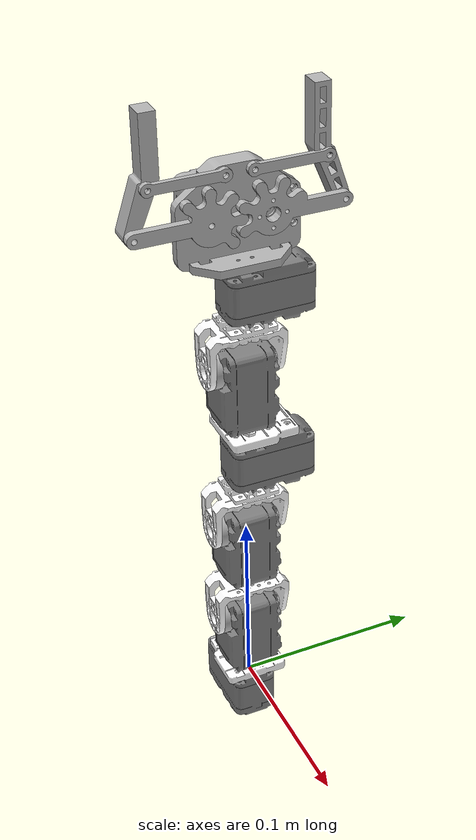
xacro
<?xml version="1.0"?>
<!-- HerkuleX Arm Chain -->

<robot name="HerkuleX" xmlns:xacro="http://ros.org/wiki/xacro">
  <!-- Import Rviz colors -->
  <xacro:include filename="$(find HerkuleX_description)/urdf/materials.xacro" />

  <xacro:property name="LSupport"	value="0.00275"/>
  <xacro:property name="Brakect05H"	value="0.00275"/>
  <xacro:property name="HerkuleXZoffset" value="0.03533"/>

  <xacro:property name="PI"	value="3.1415926"/>

  <link name="base"/>
  <joint name="fixed" type="fixed">
    <parent link="base"/>
    <child link="link1"/>
     <origin xyz="0 0 0.00313" rpy="0 0 0"/>
  </joint>

  <link name="link1">
    <collision>
      <origin xyz="0 0 0" rpy="0 0 0"/>
      <geometry>
        <mesh filename="package://HerkuleX_description/meshes//DRS_0101.stl" scale="0.001 0.001 0.001"/>
      </geometry>
     	<material name="DarkGrey"/>
    </collision>
    <visual>
      <origin xyz="0 0 0" rpy="0 0 0"/>
      <geometry>
        <mesh filename="package://HerkuleX_description/meshes//DRS_0101.stl" scale="0.001 0.001 0.001"/>
      </geometry>
      	<material name="DarkGrey"/>
    </visual>
    <inertial>
      <origin xyz="0 0 0" rpy="0 0 0"/>
      <mass value="1"/>
      <inertia ixx="1.0" ixy="0.0" ixz="0.0" iyy="1.0" iyz="0.0" izz="1.0"/>
    </inertial>
  </link>

  <joint name="joint1" type="revolute">
    <parent link="link1"/>
    <child link="horn1"/>
    <origin xyz="0 0 0" rpy="0 0 0"/>
    <axis xyz="0 0 1"/>
    <limit effort="30" lower="-2.617" upper="2.617" velocity="1.571"/>
  </joint>

  <link name="horn1">
    <collision>
      <origin xyz="0 0 0" rpy="0 0 0"/>
      <geometry>
        <mesh filename="package://HerkuleX_description/meshes//horn.stl" scale="0.001 0.001 0.001"/>
      </geometry>
     	<material name="Grey"/>
    </collision>
    <visual>
      <origin xyz="0 0 0" rpy="0 0 0"/>
      <geometry>
        <mesh filename="package://HerkuleX_description/meshes//horn.stl" scale="0.001 0.001 0.001"/>
      </geometry>
      	<material name="Grey"/>
    </visual>
    <inertial>
      <origin xyz="0 0 0" rpy="0 0 0"/>
      <mass value="1"/>
      <inertia ixx="1.0" ixy="0.0" ixz="0.0" iyy="1.0" iyz="0.0" izz="1.0"/>
    </inertial>
  </link>

  <joint name="fixed1" type="fixed">
    <parent link="horn1"/>
    <child link="DRB00051"/>
  </joint>

  <link name="DRB00051">
    <collision>
      <origin xyz="0 0 0" rpy="0 0 0"/>
      <geometry>
        <mesh filename="package://HerkuleX_description/meshes//DRB_0005.stl" scale="0.001 0.001 0.001"/>
      </geometry>
     	<material name="White"/>
    </collision>
    <visual>
      <origin xyz="0 0 0" rpy="0 0 0"/>
      <geometry>
        <mesh filename="package://HerkuleX_description/meshes//DRB_0005.stl" scale="0.001 0.001 0.001"/>
      </geometry>
      	<material name="White"/>
    </visual>
    <inertial>
      <origin xyz="0 0 0" rpy="0 0 0"/>
      <mass value="1"/>
      <inertia ixx="1.0" ixy="0.0" ixz="0.0" iyy="1.0" iyz="0.0" izz="1.0"/>
    </inertial>
  </link>

  <joint name="fixed2" type="fixed">
    <parent link="DRB00051"/>
    <child link="link2"/>
  </joint>

  <link name="link2">
    <collision>
      <origin xyz="0 -0.01625 ${HerkuleXZoffset + LSupport + Brakect05H}" rpy="${PI/2} ${-PI/2} 0"/>
      <geometry>
        <mesh filename="package://HerkuleX_description/meshes//DRS_0101.stl" scale="0.001 0.001 0.001"/>
      </geometry>
     	<material name="DarkGrey"/>
    </collision>
    <visual>
      <origin xyz="0 -0.01625 ${HerkuleXZoffset + LSupport + Brakect05H}" rpy="${PI/2} ${-PI/2} 0"/>
      <geometry>
        <mesh filename="package://HerkuleX_description/meshes//DRS_0101.stl" scale="0.001 0.001 0.001"/>
      </geometry>
      	<material name="DarkGrey"/>
    </visual>
    <inertial>
      <origin xyz="0 -0.01625 ${HerkuleXZoffset + LSupport + Brakect05H}" rpy="${PI/2} ${-PI/2} 0"/>
      <mass value="1"/>
      <inertia ixx="1.0" ixy="0.0" ixz="0.0" iyy="1.0" iyz="0.0" izz="1.0"/>
    </inertial>
  </link>

  <joint name="joint2" type="revolute">
    <parent link="link2"/>
    <child link="horn2"/>
    <origin xyz="0 -0.01625 ${HerkuleXZoffset + LSupport + Brakect05H}" rpy="${PI/2} ${-PI/2} 0"/>
    <axis xyz="0 0 1"/>
    <limit effort="30" lower="-2.44346" upper="2.44346" velocity="1.571"/>
  </joint>

  <link name="horn2">
    <collision>
      <origin xyz="0 0 0" rpy="0 0 0"/>
      <geometry>
        <mesh filename="package://HerkuleX_description/meshes//horn.stl" scale="0.001 0.001 0.001"/>
      </geometry>
     	<material name="Grey"/>
    </collision>
    <visual>
      <origin xyz="0 0 0" rpy="0 0 0"/>
      <geometry>
        <mesh filename="package://HerkuleX_description/meshes//horn.stl" scale="0.001 0.001 0.001"/>
      </geometry>
      	<material name="Grey"/>
    </visual>
    <inertial>
      <origin xyz="0 0 0" rpy="0 0 0"/>
      <mass value="1"/>
      <inertia ixx="1.0" ixy="0.0" ixz="0.0" iyy="1.0" iyz="0.0" izz="1.0"/>
    </inertial>
  </link>

  <joint name="fixed3" type="fixed">
    <parent link="horn2"/>
    <child link="DRB00091"/>
  </joint>

  <link name="DRB00091">
    <collision>
      <origin xyz="0.0215 0 -0.016" rpy="${-PI/2} 0 ${PI/2}"/>
      <geometry>
        <mesh filename="package://HerkuleX_description/meshes//DRB_0009.stl" scale="0.001 0.001 0.001"/>
      </geometry>
     	<material name="White"/>
    </collision>
    <visual>
      <origin xyz="0.0215 0 -0.016" rpy="${-PI/2} 0 ${PI/2}"/>
      <geometry>
        <mesh filename="package://HerkuleX_description/meshes//DRB_0009.stl" scale="0.001 0.001 0.001"/>
      </geometry>
      	<material name="White"/>
    </visual>
    <inertial>
      <origin xyz="0.0215 0 -0.016" rpy="${-PI/2} 0 ${PI/2}"/>
      <mass value="1"/>
      <inertia ixx="1.0" ixy="0.0" ixz="0.0" iyy="1.0" iyz="0.0" izz="1.0"/>
    </inertial>
  </link>

  <joint name="fixed4" type="fixed">
    <parent link="DRB00091"/>
    <child link="link3"/>
  </joint>

  <link name="link3">
    <collision>
      <origin xyz="${HerkuleXZoffset + LSupport + 0.0215} 0 0" rpy="0 0 0"/>
      <geometry>
        <mesh filename="package://HerkuleX_description/meshes//DRS_0101.stl" scale="0.001 0.001 0.001"/>
      </geometry>
     	<material name="DarkGrey"/>
    </collision>
    <visual>
      <origin xyz="${HerkuleXZoffset + LSupport + 0.0215} 0 0" rpy="0 0 0"/>
      <geometry>
        <mesh filename="package://HerkuleX_description/meshes//DRS_0101.stl" scale="0.001 0.001 0.001"/>
      </geometry>
      	<material name="DarkGrey"/>
    </visual>
    <inertial>
      <origin xyz="${HerkuleXZoffset + LSupport + 0.0215} 0 0" rpy="0 0 0"/>
      <mass value="1"/>
      <inertia ixx="1.0" ixy="0.0" ixz="0.0" iyy="1.0" iyz="0.0" izz="1.0"/>
    </inertial>
  </link>

  <joint name="joint3" type="revolute">
    <parent link="link3"/>
    <child link="horn3"/>
    <origin xyz="${HerkuleXZoffset + LSupport + 0.0215} 0 0" rpy="0 0 0"/>
    <axis xyz="0 0 1"/>
    <limit effort="30" lower="-2.44346" upper="2.44346" velocity="1.571"/>
  </joint>

  <link name="horn3">
    <collision>
      <origin xyz="0 0 0" rpy="0 0 0"/>
      <geometry>
        <mesh filename="package://HerkuleX_description/meshes//horn.stl" scale="0.001 0.001 0.001"/>
      </geometry>
     	<material name="Grey"/>
    </collision>
    <visual>
      <origin xyz="0 0 0" rpy="0 0 0"/>
      <geometry>
        <mesh filename="package://HerkuleX_description/meshes//horn.stl" scale="0.001 0.001 0.001"/>
      </geometry>
      	<material name="Grey"/>
    </visual>
    <inertial>
      <origin xyz="0 0 0" rpy="0 0 0"/>
      <mass value="1"/>
      <inertia ixx="1.0" ixy="0.0" ixz="0.0" iyy="1.0" iyz="0.0" izz="1.0"/>
    </inertial>
  </link>

  <joint name="fixed5" type="fixed">
    <parent link="horn3"/>
    <child link="DRB00092"/>
  </joint>

  <link name="DRB00092">
    <collision>
      <origin xyz="0.0215 0 -0.016" rpy="${-PI/2} 0 ${PI/2}"/>
      <geometry>
        <mesh filename="package://HerkuleX_description/meshes//DRB_0009.stl" scale="0.001 0.001 0.001"/>
      </geometry>
     	<material name="White"/>
    </collision>
    <visual>
      <origin xyz="0.0215 0 -0.016" rpy="${-PI/2} 0 ${PI/2}"/>
      <geometry>
        <mesh filename="package://HerkuleX_description/meshes//DRB_0009.stl" scale="0.001 0.001 0.001"/>
      </geometry>
      	<material name="White"/>
    </visual>
    <inertial>
      <origin xyz="0.0215 0 -0.016" rpy="${-PI/2} 0 ${PI/2}"/>
      <mass value="1"/>
      <inertia ixx="1.0" ixy="0.0" ixz="0.0" iyy="1.0" iyz="0.0" izz="1.0"/>
    </inertial>
  </link>

  <joint name="fixed6" type="fixed">
    <parent link="DRB00092"/>
    <child link="DRB00041"/>
  </joint>

  <link name="DRB00041">
    <collision>
      <origin xyz="${0.0215+Brakect05H} 0 -0.01625" rpy="${PI/2} 0 0"/>
      <geometry>
        <mesh filename="package://HerkuleX_description/meshes//DRB_0004.stl" scale="0.001 0.001 0.001"/>
      </geometry>
     	<material name="White"/>
    </collision>
    <visual>
      <origin xyz="${0.0215+Brakect05H} 0 -0.01625" rpy="${PI/2} 0 0"/>
      <geometry>
        <mesh filename="package://HerkuleX_description/meshes//DRB_0004.stl" scale="0.001 0.001 0.001"/>
      </geometry>
      	<material name="White"/>
    </visual>
    <inertial>
      <origin xyz="${0.0215+Brakect05H} 0 -0.01625" rpy="${PI/2} 0 0"/>
      <mass value="1"/>
      <inertia ixx="1.0" ixy="0.0" ixz="0.0" iyy="1.0" iyz="0.0" izz="1.0"/>
    </inertial>
  </link>

  <joint name="fixed7" type="fixed">
    <parent link="DRB00041"/>
    <child link="link4"/>
     <origin xyz="0 0 0" rpy="0 0 0"/>
  </joint>

  <link name="link4">
    <collision>
      <origin xyz="${HerkuleXZoffset + 0.0215} 0 -0.01625" rpy="${PI} ${-PI/2} 0"/>
      <geometry>
        <mesh filename="package://HerkuleX_description/meshes//DRS_0101.stl" scale="0.001 0.001 0.001"/>
      </geometry>
     	<material name="DarkGrey"/>
    </collision>
    <visual>
      <origin xyz="${HerkuleXZoffset + 0.0215} 0 -0.01625" rpy="${PI} ${-PI/2} 0"/>
      <geometry>
        <mesh filename="package://HerkuleX_description/meshes//DRS_0101.stl" scale="0.001 0.001 0.001"/>
      </geometry>
      	<material name="DarkGrey"/>
    </visual>
    <inertial>
      <origin xyz="${HerkuleXZoffset + 0.0215} 0 -0.01625" rpy="${PI} ${-PI/2} 0"/>
      <mass value="1"/>
      <inertia ixx="1.0" ixy="0.0" ixz="0.0" iyy="1.0" iyz="0.0" izz="1.0"/>
    </inertial>
  </link>

  <joint name="joint4" type="revolute">
    <parent link="link4"/>
    <child link="horn4"/>
    <origin xyz="${HerkuleXZoffset + 0.0215} 0 -0.01625" rpy="${PI/2} ${PI} ${PI/2}"/>
    <axis xyz="0 0 1"/>
    <limit effort="30" lower="-2.617" upper="2.617" velocity="1.571"/>
  </joint>

  <link name="horn4">
    <collision>
      <origin xyz="0 0 0" rpy="0 0 0"/>
      <geometry>
        <mesh filename="package://HerkuleX_description/meshes//horn.stl" scale="0.001 0.001 0.001"/>
      </geometry>
     	<material name="Grey"/>
    </collision>
    <visual>
      <origin xyz="0 0 0" rpy="0 0 0"/>
      <geometry>
        <mesh filename="package://HerkuleX_description/meshes//horn.stl" scale="0.001 0.001 0.001"/>
      </geometry>
      	<material name="Grey"/>
    </visual>
    <inertial>
      <origin xyz="0 0 0" rpy="0 0 0"/>
      <mass value="1"/>
      <inertia ixx="1.0" ixy="0.0" ixz="0.0" iyy="1.0" iyz="0.0" izz="1.0"/>
    </inertial>
  </link>

  <joint name="fixed8" type="fixed">
    <parent link="horn4"/>
    <child link="DRB00052"/>
     <origin xyz="0 0 0" rpy="0 0 0"/>
  </joint>

  <link name="DRB00052">
    <collision>
      <origin xyz="0 0 0" rpy="0 0 ${-PI/2}"/>
      <geometry>
        <mesh filename="package://HerkuleX_description/meshes//DRB_0005.stl" scale="0.001 0.001 0.001"/>
      </geometry>
     	<material name="White"/>
    </collision>
    <visual>
      <origin xyz="0 0 0" rpy="0 0 ${-PI/2}"/>
      <geometry>
        <mesh filename="package://HerkuleX_description/meshes//DRB_0005.stl" scale="0.001 0.001 0.001"/>
      </geometry>
      	<material name="White"/>
    </visual>
    <inertial>
      <origin xyz="0 0 0" rpy="0 0 ${-PI/2}"/>
      <mass value="1"/>
      <inertia ixx="1.0" ixy="0.0" ixz="0.0" iyy="1.0" iyz="0.0" izz="1.0"/>
    </inertial>
  </link>

  <joint name="fixed9" type="fixed">
    <parent link="DRB00052"/>
    <child link="link5"/>
     <origin xyz="0 0 0" rpy="0 0 0"/>
  </joint>

  <link name="link5">
    <collision>
      <origin xyz="0 -0.01625 ${HerkuleXZoffset + LSupport + Brakect05H}" rpy="${PI/2} ${-PI/2} 0"/>
      <geometry>
        <mesh filename="package://HerkuleX_description/meshes//DRS_0101.stl" scale="0.001 0.001 0.001"/>
      </geometry>
     	<material name="DarkGrey"/>
    </collision>
    <visual>
      <origin xyz="0 -0.01625 ${HerkuleXZoffset + LSupport + Brakect05H}" rpy="${PI/2} ${-PI/2} 0"/>
      <geometry>
        <mesh filename="package://HerkuleX_description/meshes//DRS_0101.stl" scale="0.001 0.001 0.001"/>
      </geometry>
      	<material name="DarkGrey"/>
    </visual>
    <inertial>
      <origin xyz="0 -0.01625 ${HerkuleXZoffset + LSupport + Brakect05H}" rpy="${PI/2} ${-PI/2} 0"/>
      <mass value="1"/>
      <inertia ixx="1.0" ixy="0.0" ixz="0.0" iyy="1.0" iyz="0.0" izz="1.0"/>
    </inertial>
  </link>

  <joint name="joint5" type="revolute">
    <parent link="link5"/>
    <child link="horn5"/>
     <origin xyz="0 -0.01625 ${HerkuleXZoffset + LSupport + Brakect05H}" rpy="${PI/2} ${-PI/2} 0"/>
    <axis xyz="0 0 1"/>
    <limit effort="30" lower="-2.44346" upper="2.44346" velocity="1.571"/>
  </joint>

  <link name="horn5">
    <collision>
      <origin xyz="0 0 0" rpy="0 0 0"/>
      <geometry>
        <mesh filename="package://HerkuleX_description/meshes//horn.stl" scale="0.001 0.001 0.001"/>
      </geometry>
     	<material name="Grey"/>
    </collision>
    <visual>
      <origin xyz="0 0 0" rpy="0 0 0"/>
      <geometry>
        <mesh filename="package://HerkuleX_description/meshes//horn.stl" scale="0.001 0.001 0.001"/>
      </geometry>
      	<material name="Grey"/>
    </visual>
    <inertial>
      <origin xyz="0 0 0" rpy="0 0 0"/>
      <mass value="1"/>
      <inertia ixx="1.0" ixy="0.0" ixz="0.0" iyy="1.0" iyz="0.0" izz="1.0"/>
    </inertial>
  </link>

  <joint name="fixed10" type="fixed">
    <parent link="horn5"/>
    <child link="DRB00093"/>
  </joint>

  <link name="DRB00093">
    <collision>
      <origin xyz="0.0215 0 -0.016" rpy="${-PI/2} 0 ${PI/2}"/>
      <geometry>
        <mesh filename="package://HerkuleX_description/meshes//DRB_0009.stl" scale="0.001 0.001 0.001"/>
      </geometry>
     	<material name="White"/>
    </collision>
    <visual>
      <origin xyz="0.0215 0 -0.016" rpy="${-PI/2} 0 ${PI/2}"/>
      <geometry>
        <mesh filename="package://HerkuleX_description/meshes//DRB_0009.stl" scale="0.001 0.001 0.001"/>
      </geometry>
      	<material name="White"/>
    </visual>
    <inertial>
      <origin xyz="0.0215 0 -0.016" rpy="${-PI/2} 0 ${PI/2}"/>
      <mass value="1"/>
      <inertia ixx="1.0" ixy="0.0" ixz="0.0" iyy="1.0" iyz="0.0" izz="1.0"/>
    </inertial>
  </link>

  <joint name="fixed11" type="fixed">
    <parent link="DRB00093"/>
    <child link="DRB00042"/>
  </joint>

  <link name="DRB00042">
    <collision>
      <origin xyz="${0.0215+Brakect05H} 0 -0.01625" rpy="${PI/2} 0 0"/>
      <geometry>
        <mesh filename="package://HerkuleX_description/meshes//DRB_0004.stl" scale="0.001 0.001 0.001"/>
      </geometry>
     	<material name="White"/>
    </collision>
    <visual>
      <origin xyz="${0.0215+Brakect05H} 0 -0.01625" rpy="${PI/2} 0 0"/>
      <geometry>
        <mesh filename="package://HerkuleX_description/meshes//DRB_0004.stl" scale="0.001 0.001 0.001"/>
      </geometry>
      	<material name="White"/>
    </visual>
    <inertial>
      <origin xyz="${0.0215+Brakect05H} 0 -0.01625" rpy="${PI/2} 0 0"/>
      <mass value="1"/>
      <inertia ixx="1.0" ixy="0.0" ixz="0.0" iyy="1.0" iyz="0.0" izz="1.0"/>
    </inertial>
  </link>

  <joint name="fixed12" type="fixed">
    <parent link="DRB00042"/>
    <child link="link6"/>
     <origin xyz="0 0 0" rpy="0 0 0"/>
  </joint>

  <link name="link6">
    <collision>
      <origin xyz="${HerkuleXZoffset + 0.0215} 0 -0.01625" rpy="${PI} ${-PI/2} 0"/>
      <geometry>
        <mesh filename="package://HerkuleX_description/meshes//DRS_0101.stl" scale="0.001 0.001 0.001"/>
      </geometry>
     	<material name="DarkGrey"/>
    </collision>
    <visual>
      <origin xyz="${HerkuleXZoffset + 0.0215} 0 -0.01625" rpy="${PI} ${-PI/2} 0"/>
      <geometry>
        <mesh filename="package://HerkuleX_description/meshes//DRS_0101.stl" scale="0.001 0.001 0.001"/>
      </geometry>
      	<material name="DarkGrey"/>
    </visual>
    <inertial>
      <origin xyz="${HerkuleXZoffset + 0.0215} 0 -0.01625" rpy="${PI} ${-PI/2} 0"/>
      <mass value="1"/>
      <inertia ixx="1.0" ixy="0.0" ixz="0.0" iyy="1.0" iyz="0.0" izz="1.0"/>
    </inertial>
  </link>

  <joint name="joint6" type="revolute">
    <parent link="link6"/>
    <child link="horn6"/>
    <origin xyz="${HerkuleXZoffset + 0.0215} 0 -0.01625" rpy="${PI/2} ${PI} ${PI/2}"/>
    <axis xyz="0 0 1"/>
    <limit effort="30" lower="-2.617" upper="2.617" velocity="1.571"/>
  </joint>

  <link name="horn6">
    <collision>
      <origin xyz="0 0 0" rpy="0 0 0"/>
      <geometry>
        <mesh filename="package://HerkuleX_description/meshes//horn.stl" scale="0.001 0.001 0.001"/>
      </geometry>
     	<material name="Grey"/>
    </collision>
    <visual>
      <origin xyz="0 0 0" rpy="0 0 0"/>
      <geometry>
        <mesh filename="package://HerkuleX_description/meshes//horn.stl" scale="0.001 0.001 0.001"/>
      </geometry>
      	<material name="Grey"/>
    </visual>
    <inertial>
      <origin xyz="0 0 0" rpy="0 0 0"/>
      <mass value="1"/>
      <inertia ixx="1.0" ixy="0.0" ixz="0.0" iyy="1.0" iyz="0.0" izz="1.0"/>
    </inertial>
  </link>

<!-- Gripper part -->
  <joint name="fixed13" type="fixed">
    <parent link="horn6"/>
    <child link="gripper-bottom-cover"/>
     <origin xyz="0 0 0" rpy="0 0 ${-PI/2}"/>
  </joint>

  <link name="gripper-bottom-cover">
    <collision>
      <origin xyz="0 0 0" rpy="0 0 0"/>
      <geometry>
        <mesh filename="package://HerkuleX_description/meshes/gripper//gripper-bottom-cover.stl" scale="0.001 0.001 0.001"/>
      </geometry>
     	<material name="Grey"/>
    </collision>
    <visual>
      <origin xyz="0 0 0" rpy="0 0 0"/>
      <geometry>
        <mesh filename="package://HerkuleX_description/meshes/gripper//gripper-bottom-cover.stl" scale="0.001 0.001 0.001"/>
      </geometry>
      	<material name="Grey"/>
    </visual>
    <inertial>
      <origin xyz="0 0 0" rpy="0 0 0"/>
      <mass value="1"/>
      <inertia ixx="1.0" ixy="0.0" ixz="0.0" iyy="1.0" iyz="0.0" izz="1.0"/>
    </inertial>
  </link>

  <joint name="fixed14" type="fixed">
    <parent link="gripper-bottom-cover"/>
    <child link="gripper-bottom"/>
     <origin xyz="-0.01528 0 ${0.01885+0.0042-0.0003}" rpy="0 ${PI/2} ${-PI/2}"/>
  </joint>

  <link name="gripper-bottom">
    <collision>
      <origin xyz="0 0 0" rpy="0 0 0"/>
      <geometry>
        <mesh filename="package://HerkuleX_description/meshes/gripper//gripper-bottom.stl" scale="0.001 0.001 0.001"/>
      </geometry>
     	<material name="Grey"/>
    </collision>
    <visual>
      <origin xyz="0 0 0" rpy="0 0 0"/>
      <geometry>
        <mesh filename="package://HerkuleX_description/meshes/gripper//gripper-bottom.stl" scale="0.001 0.001 0.001"/>
      </geometry>
      	<material name="Grey"/>
    </visual>
    <inertial>
      <origin xyz="0 0 0" rpy="0 0 0"/>
      <mass value="1"/>
      <inertia ixx="1.0" ixy="0.0" ixz="0.0" iyy="1.0" iyz="0.0" izz="1.0"/>
    </inertial>
  </link>

  <joint name="fixed15" type="fixed">
    <parent link="gripper-bottom"/>
    <child link="link7"/>
     <origin xyz="0 0 0.0026" rpy="0 ${PI} ${PI/2}"/>
  </joint>

  <link name="link7">
    <collision>
      <origin xyz="0 0 0" rpy="0 0 0"/>
      <geometry>
        <mesh filename="package://HerkuleX_description/meshes//DRS_0101.stl" scale="0.001 0.001 0.001"/>
      </geometry>
     	<material name="Grey"/>
    </collision>
    <visual>
      <origin xyz="0 0 0" rpy="0 0 0"/>
      <geometry>
        <mesh filename="package://HerkuleX_description/meshes//DRS_0101.stl" scale="0.001 0.001 0.001"/>
      </geometry>
      	<material name="Grey"/>
    </visual>
    <inertial>
      <origin xyz="0 0 0" rpy="0 0 0"/>
      <mass value="1"/>
      <inertia ixx="1.0" ixy="0.0" ixz="0.0" iyy="1.0" iyz="0.0" izz="1.0"/>
    </inertial>
  </link>

  <joint name="joint7" type="revolute">
    <parent link="link7"/>
    <child link="horn7"/>
    <origin xyz="0 0 0" rpy="0 0 0"/>
    <axis xyz="0 0 1"/>
    <limit effort="30" lower="0.0" upper="1.5708" velocity="1.571"/>
  </joint>

  <link name="horn7">
    <collision>
      <origin xyz="0 0 0" rpy="0 0 0"/>
      <geometry>
        <mesh filename="package://HerkuleX_description/meshes//horn.stl" scale="0.001 0.001 0.001"/>
      </geometry>
     	<material name="Grey"/>
    </collision>
    <visual>
      <origin xyz="0 0 0" rpy="0 0 0"/>
      <geometry>
        <mesh filename="package://HerkuleX_description/meshes//horn.stl" scale="0.001 0.001 0.001"/>
      </geometry>
      	<material name="Grey"/>
    </visual>
    <inertial>
      <origin xyz="0 0 0" rpy="0 0 0"/>
      <mass value="1"/>
      <inertia ixx="1.0" ixy="0.0" ixz="0.0" iyy="1.0" iyz="0.0" izz="1.0"/>
    </inertial>
  </link>

  <joint name="fixed16" type="fixed">
    <parent link="horn7"/>
    <child link="gripper-right"/>
     <origin xyz="0 0 0" rpy="0 0 ${-PI/2}"/>
  </joint>

  <link name="gripper-right">
    <collision>
      <origin xyz="0 0 0" rpy="0 0 0"/>
      <geometry>
        <mesh filename="package://HerkuleX_description/meshes/gripper//gripper-right.stl" scale="0.001 0.001 0.001"/>
      </geometry>
     	<material name="Grey"/>
    </collision>
    <visual>
      <origin xyz="0 0 0" rpy="0 0 0"/>
      <geometry>
        <mesh filename="package://HerkuleX_description/meshes/gripper//gripper-right.stl" scale="0.001 0.001 0.001"/>
      </geometry>
      	<material name="Grey"/>
    </visual>
    <inertial>
      <origin xyz="0 0 0" rpy="0 0 0"/>
      <mass value="1"/>
      <inertia ixx="1.0" ixy="0.0" ixz="0.0" iyy="1.0" iyz="0.0" izz="1.0"/>
    </inertial>
  </link>

  <joint name="fixed17" type="revolute">
    <parent link="gripper-bottom"/>
    <child link="gripper-left"/>
     <origin xyz="0 ${0.01528 * 2.0} 0" rpy="0 ${PI} 0"/>
     <axis xyz="0 0 1"/>
     <limit effort="30" lower="-1.5708" upper="1.5708" velocity="1.571"/>
     <mimic joint="joint7" multiplier="-1"/>
  </joint>

  <link name="gripper-left">
    <collision>
      <origin xyz="0 0 0" rpy="0 0 0"/>
      <geometry>
        <mesh filename="package://HerkuleX_description/meshes/gripper//gripper-left.stl" scale="0.001 0.001 0.001"/>
      </geometry>
     	<material name="Grey"/>
    </collision>
    <visual>
      <origin xyz="0 0 0" rpy="0 0 0"/>
      <geometry>
        <mesh filename="package://HerkuleX_description/meshes/gripper//gripper-left.stl" scale="0.001 0.001 0.001"/>
      </geometry>
      	<material name="Grey"/>
    </visual>
    <inertial>
      <origin xyz="0 0 0" rpy="0 0 0"/>
      <mass value="1"/>
      <inertia ixx="1.0" ixy="0.0" ixz="0.0" iyy="1.0" iyz="0.0" izz="1.0"/>
    </inertial>
  </link>

  <joint name="fixed18" type="continuous">
    <parent link="gripper-right"/>
    <child link="gripper-link1"/>
     <origin xyz="0 0.0377 0.0036" rpy="0 0 ${PI}"/>
     <axis xyz="0 0 1"/>
     <mimic joint="joint7" multiplier="-1"/>
  </joint>

  <link name="gripper-link1">
    <collision>
      <origin xyz="0 0 0" rpy="0 0 0"/>
      <geometry>
        <mesh filename="package://HerkuleX_description/meshes/gripper//gripper-link1.stl" scale="0.001 0.001 0.001"/>
      </geometry>
     	<material name="Grey"/>
    </collision>
    <visual>
      <origin xyz="0 0 0" rpy="0 0 0"/>
      <geometry>
        <mesh filename="package://HerkuleX_description/meshes/gripper//gripper-link1.stl" scale="0.001 0.001 0.001"/>
      </geometry>
      	<material name="Grey"/>
    </visual>
    <inertial>
      <origin xyz="0 0 0" rpy="0 0 0"/>
      <mass value="1"/>
      <inertia ixx="1.0" ixy="0.0" ixz="0.0" iyy="1.0" iyz="0.0" izz="1.0"/>
    </inertial>
  </link>

  <joint name="fixed19" type="continuous">
    <parent link="gripper-bottom"/>
    <child link="gripper-link2"/>
     <origin xyz="-0.0228 0.0078 -0.0026" rpy="0 ${PI} ${PI/2}"/>
     <axis xyz="0 0 1"/>
     <mimic joint="joint7" multiplier="1"/>
  </joint>

  <link name="gripper-link2">
    <collision>
      <origin xyz="0 0 0" rpy="0 0 0"/>
      <geometry>
        <mesh filename="package://HerkuleX_description/meshes/gripper//gripper-link2.stl" scale="0.001 0.001 0.001"/>
      </geometry>
     	<material name="Grey"/>
    </collision>
    <visual>
      <origin xyz="0 0 0" rpy="0 0 0"/>
      <geometry>
        <mesh filename="package://HerkuleX_description/meshes/gripper//gripper-link2.stl" scale="0.001 0.001 0.001"/>
      </geometry>
      	<material name="Grey"/>
    </visual>
    <inertial>
      <origin xyz="0 0 0" rpy="0 0 0"/>
      <mass value="1"/>
      <inertia ixx="1.0" ixy="0.0" ixz="0.0" iyy="1.0" iyz="0.0" izz="1.0"/>
    </inertial>
  </link>

  <joint name="fixed20" type="continuous">
    <parent link="gripper-left"/>
    <child link="gripper-link1-1"/>
     <origin xyz="0 0.0377 -0.0104" rpy="${PI} 0 0"/>
     <axis xyz="0 0 1"/>
     <mimic joint="joint7" multiplier="-1"/>
  </joint>

  <link name="gripper-link1-1">
    <collision>
      <origin xyz="0 0 0" rpy="0 0 0"/>
      <geometry>
        <mesh filename="package://HerkuleX_description/meshes/gripper//gripper-link1.stl" scale="0.001 0.001 0.001"/>
      </geometry>
     	<material name="Grey"/>
    </collision>
    <visual>
      <origin xyz="0 0 0" rpy="0 0 0"/>
      <geometry>
        <mesh filename="package://HerkuleX_description/meshes/gripper//gripper-link1.stl" scale="0.001 0.001 0.001"/>
      </geometry>
      	<material name="Grey"/>
    </visual>
    <inertial>
      <origin xyz="0 0 0" rpy="0 0 0"/>
      <mass value="1"/>
      <inertia ixx="1.0" ixy="0.0" ixz="0.0" iyy="1.0" iyz="0.0" izz="1.0"/>
    </inertial>
  </link>

  <joint name="fixed21" type="continuous">
    <parent link="gripper-bottom"/>
    <child link="gripper-link2-2"/>
     <origin xyz="-0.0228 ${0.0145+0.0078} 0" rpy="0 0 ${PI/2}"/>
     <axis xyz="0 0 1"/>
     <mimic joint="joint7" multiplier="1"/>
  </joint>

  <link name="gripper-link2-2">
    <collision>
      <origin xyz="0 0 0" rpy="0 0 0"/>
      <geometry>
        <mesh filename="package://HerkuleX_description/meshes/gripper//gripper-link2.stl" scale="0.001 0.001 0.001"/>
      </geometry>
     	<material name="Grey"/>
    </collision>
    <visual>
      <origin xyz="0 0 0" rpy="0 0 0"/>
      <geometry>
        <mesh filename="package://HerkuleX_description/meshes/gripper//gripper-link2.stl" scale="0.001 0.001 0.001"/>
      </geometry>
      	<material name="Grey"/>
    </visual>
    <inertial>
      <origin xyz="0 0 0" rpy="0 0 0"/>
      <mass value="1"/>
      <inertia ixx="1.0" ixy="0.0" ixz="0.0" iyy="1.0" iyz="0.0" izz="1.0"/>
    </inertial>
  </link>

</robot>

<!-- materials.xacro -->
<robot>

  <!-- Put all the color definitions in a separate file -->

  <material name="Black">
    <color rgba="0.2 0.2 0.2 0.8"/>
  </material>

  <material name="Orange">
    <color rgba="1.0  0.55 0.0 0.9"/>
  </material>

  <material name="Grey">
    <color rgba="0.7 0.7 0.7 1.0"/>
  </material>

  <material name="DarkGrey">
    <color rgba="0.5 0.5 0.5 1.0"/>
  </material>

  <material name="Red">
    <color rgba="0.8 0.0 0.0 0.9"/>
  </material>

  <material name="White">
    <color rgba="1.0 1.0 1.0 1.0"/>
  </material>

  <material name="OffWhite">
    <color rgba="0.8 0.8 0.8 0.95"/>
  </material>

  <material name="Blue">
    <color rgba="0.0 0.0 0.8 0.9"/>
  </material>

  <material name="Green">
    <color rgba="0.0 0.8 0.0 0.9"/>
  </material>

</robot>
